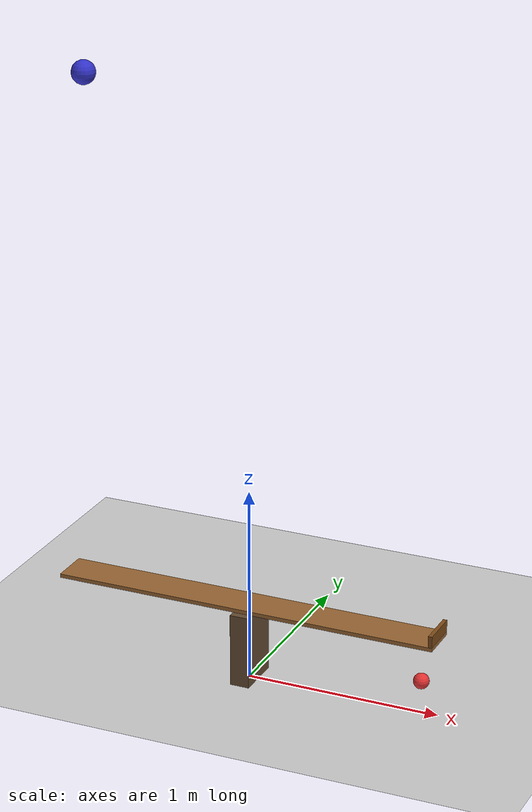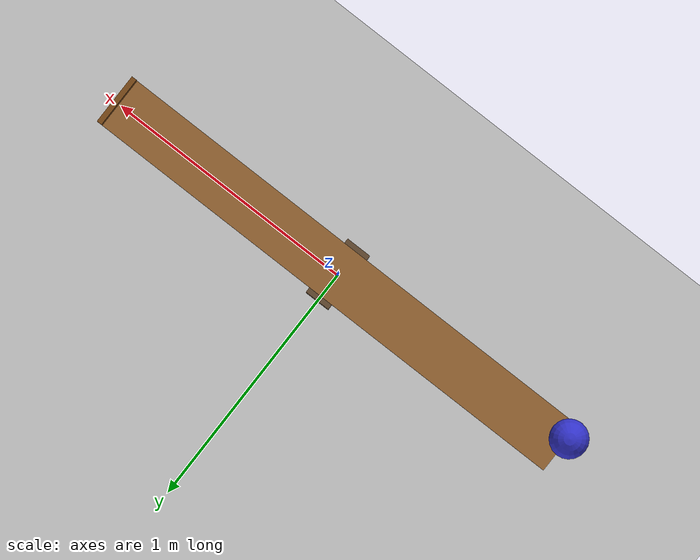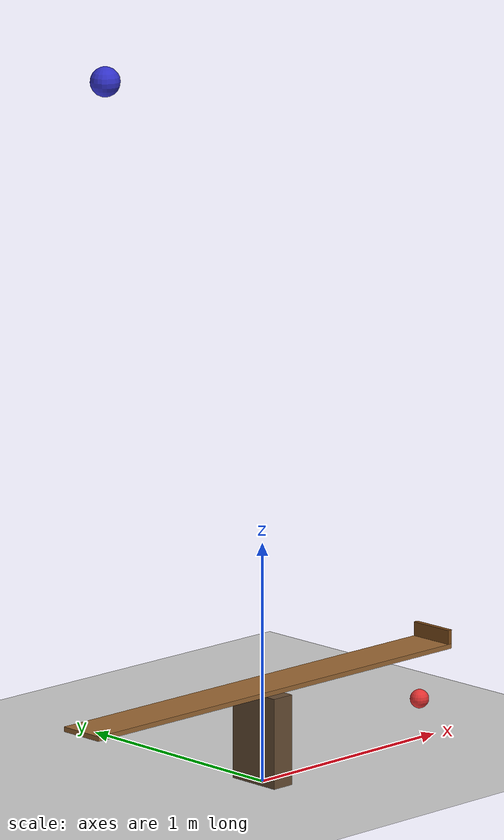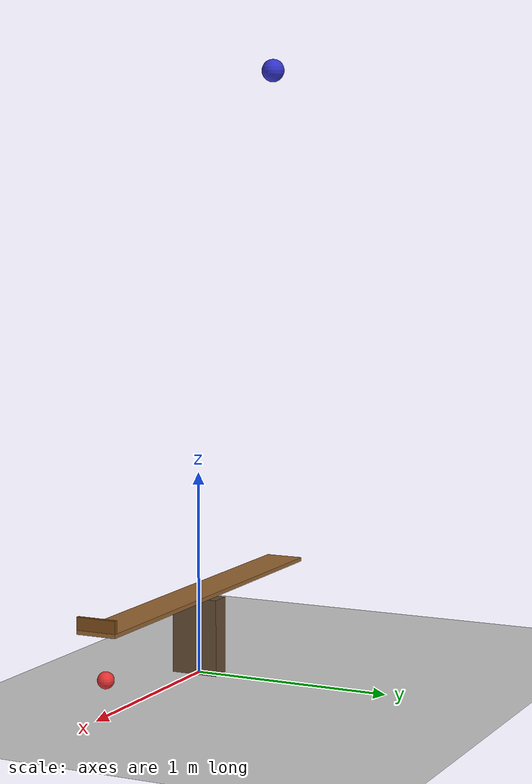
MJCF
<mujoco model="seesaw_catapult">
  <compiler angle="radian"/>
  <option timestep="0.002" gravity="0 0 -9.81"/>

  <worldbody>
    <light name="sun" pos="0 0 5" dir="0 0 -1" directional="true"/>
    <geom name="floor" type="plane" size="5 5 0.1" rgba="0.8 0.8 0.8 1" friction="1 0.005 0.005"/>

    <!-- visual-only fulcrum -->
    <geom name="fulcrum" type="box" pos="0 0 0.19" size="0.05 0.12 0.19" contype="0" conaffinity="0" rgba="0.4 0.3 0.2 1"/>

    <!-- seesaw: pivot at z=0.4, ball end at +x, weight lands on -x end -->
    <body name="seesaw" pos="0 0 0.4">
      <joint name="pivot" type="hinge" axis="0 1 0" limited="true" range="-0.3 0.3" damping="0.02"/>
      <geom name="plank" type="box" size="1.0 0.1 0.01" mass="0.5" rgba="0.6 0.4 0.2 1"/>
      <geom name="lip" type="box" pos="0.99 0 0.04" size="0.01 0.1 0.03" mass="0.02" rgba="0.5 0.3 0.1 1"/>
    </body>

    <!-- 1 kg dropped weight -->
    <body name="weight" pos="-0.85 0 3.0">
      <freejoint name="weight_free"/>
      <geom name="weight_geom" type="sphere" size="0.06" mass="1" condim="6" friction="1 0.005 0.005" rgba="0.2 0.2 0.8 1"/>
    </body>

    <!-- 100 g thrown ball, resting on the low end against the lip -->
    <body name="ball" pos="0.9128 0 0.16998">
      <freejoint name="ball_free"/>
      <geom name="ball" type="sphere" size="0.04" mass="0.1" condim="6" friction="1 0.005 0.005" rgba="0.9 0.2 0.2 1"/>
    </body>
  </worldbody>

  <keyframe>
    <key name="start" qpos="0.3  -0.85 0 3.0 1 0 0 0  0.9128 0 0.16998 1 0 0 0" qvel="0  0 0 0 0 0 0  0 0 0 0 0 0"/>
  </keyframe>
</mujoco>
